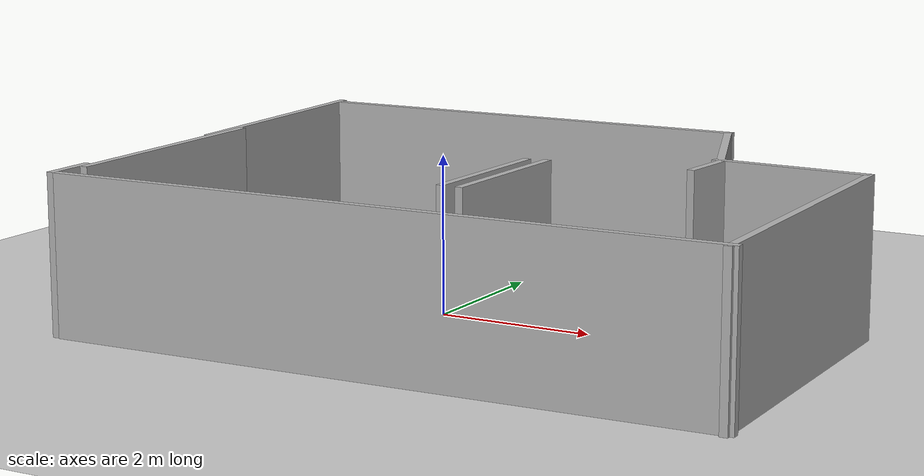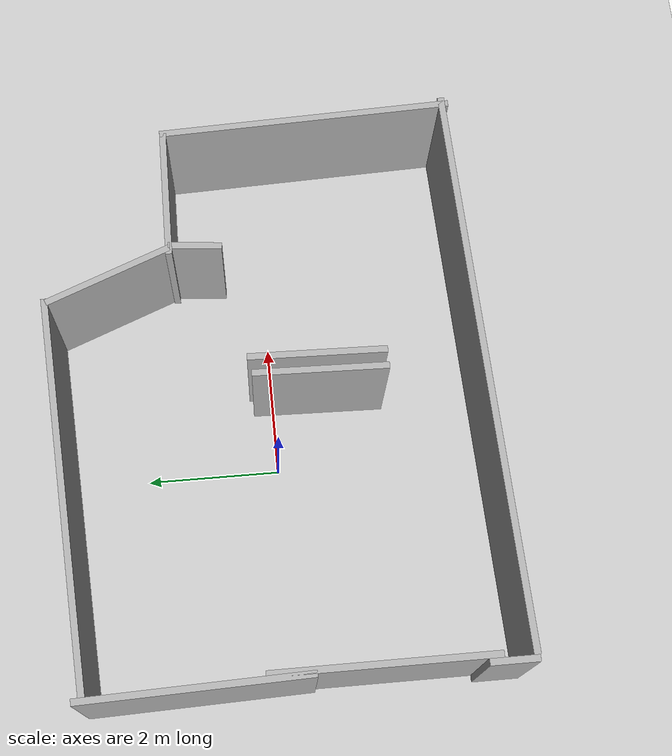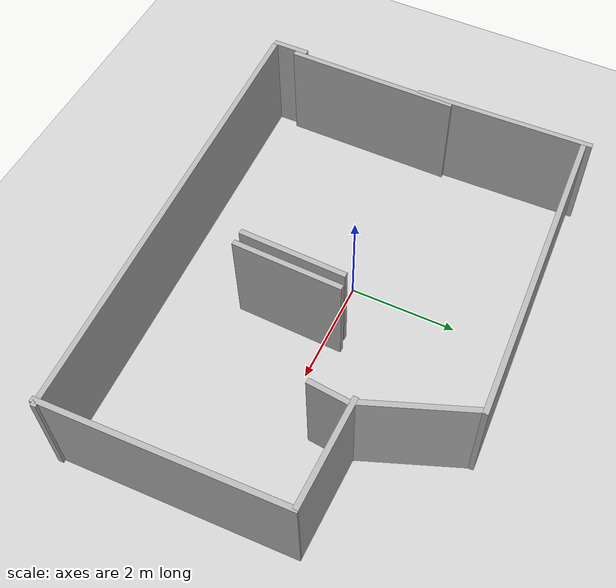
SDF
<?xml version="1.0" ?>
<sdf version="1.6">
  <world name="slam_world">
    <plugin filename="ignition-gazebo-physics-system" name="ignition::gazebo::systems::Physics"></plugin>
    <plugin filename="ignition-gazebo-scene-broadcaster-system" name="ignition::gazebo::systems::SceneBroadcaster"></plugin>
    <plugin filename="ignition-gazebo-sensors-system" name="ignition::gazebo::systems::Sensors">
      <render_engine>ogre2</render_engine>
    </plugin>
    <plugin filename="ignition-gazebo-user-commands-system" name="ignition::gazebo::systems::UserCommands"></plugin>

    <light name="sun" type="directional">
      <pose>0 0 10 0 0 0</pose>
      <diffuse>0.8 0.8 0.8 1</diffuse>
      <direction>-0.5 0.1 -0.9</direction>
    </light>
    <model name="ground_plane">
      <static>true</static>
      <link name="link">
        <collision name="collision">
          <geometry>
            <plane>
              <normal>0 0 1</normal>
              <size>100 100</size>
            </plane>
          </geometry>
        </collision>
        <visual name="visual">
          <geometry>
            <plane>
              <normal>0 0 1</normal>
              <size>100 100</size>
            </plane>
          </geometry>
          <material>
            <ambient>0.8 0.8 0.8 1</ambient>
            <diffuse>0.8 0.8 0.8 1</diffuse>
            <specular>0.8 0.8 0.8 1</specular>
          </material>
        </visual>
      </link>
    </model>
    <model name="wall_0">
      <static>true</static>
      <pose>0.9250000000000005 -3.0999999999999996 1.0 0 0 0.035073330533225394</pose>
      <link name="link">
        <collision name="collision">
          <geometry>
            <box>
              <size>8.55526153895952 0.1 2.0</size>
            </box>
          </geometry>
        </collision>
        <visual name="visual">
          <geometry>
            <box>
              <size>8.55526153895952 0.1 2.0</size>
            </box>
          </geometry>
          <material>
            <ambient>0.5 0.5 0.5 1</ambient>
            <diffuse>0.7 0.7 0.7 1</diffuse>
          </material>
        </visual>
      </link>
    </model>
    <model name="wall_1">
      <static>true</static>
      <pose>-0.5250000000000001 3.1000000000000005 1.0 0 0 0.05123716740341893</pose>
      <link name="link">
        <collision name="collision">
          <geometry>
            <box>
              <size>5.8576872569299905 0.1 2.0</size>
            </box>
          </geometry>
        </collision>
        <visual name="visual">
          <geometry>
            <box>
              <size>5.8576872569299905 0.1 2.0</size>
            </box>
          </geometry>
          <material>
            <ambient>0.5 0.5 0.5 1</ambient>
            <diffuse>0.7 0.7 0.7 1</diffuse>
          </material>
        </visual>
      </link>
    </model>
    <model name="wall_2">
      <static>true</static>
      <pose>-3.3 -1.1749999999999998 1.0 0 0 1.5707963267948966</pose>
      <link name="link">
        <collision name="collision">
          <geometry>
            <box>
              <size>3.25 0.1 2.0</size>
            </box>
          </geometry>
        </collision>
        <visual name="visual">
          <geometry>
            <box>
              <size>3.25 0.1 2.0</size>
            </box>
          </geometry>
          <material>
            <ambient>0.5 0.5 0.5 1</ambient>
            <diffuse>0.7 0.7 0.7 1</diffuse>
          </material>
        </visual>
      </link>
    </model>
    <model name="wall_4">
      <static>true</static>
      <pose>5.025000000000001 -0.8249999999999997 1.0 0 0 -1.5371012194488802</pose>
      <link name="link">
        <collision name="collision">
          <geometry>
            <box>
              <size>4.452527372178637 0.1 2.0</size>
            </box>
          </geometry>
        </collision>
        <visual name="visual">
          <geometry>
            <box>
              <size>4.452527372178637 0.1 2.0</size>
            </box>
          </geometry>
          <material>
            <ambient>0.5 0.5 0.5 1</ambient>
            <diffuse>0.7 0.7 0.7 1</diffuse>
          </material>
        </visual>
      </link>
    </model>
    <model name="wall_5">
      <static>true</static>
      <pose>-3.4000000000000004 1.4250000000000003 1.0 0 0 -1.5409544421277872</pose>
      <link name="link">
        <collision name="collision">
          <geometry>
            <box>
              <size>3.351492204973779 0.1 2.0</size>
            </box>
          </geometry>
        </collision>
        <visual name="visual">
          <geometry>
            <box>
              <size>3.351492204973779 0.1 2.0</size>
            </box>
          </geometry>
          <material>
            <ambient>0.5 0.5 0.5 1</ambient>
            <diffuse>0.7 0.7 0.7 1</diffuse>
          </material>
        </visual>
      </link>
    </model>
    <model name="wall_7">
      <static>true</static>
      <pose>1.2250000000000005 -0.6749999999999996 1.0 0 0 1.546410917622178</pose>
      <link name="link">
        <collision name="collision">
          <geometry>
            <box>
              <size>2.050609665440988 0.1 2.0</size>
            </box>
          </geometry>
        </collision>
        <visual name="visual">
          <geometry>
            <box>
              <size>2.050609665440988 0.1 2.0</size>
            </box>
          </geometry>
          <material>
            <ambient>0.5 0.5 0.5 1</ambient>
            <diffuse>0.7 0.7 0.7 1</diffuse>
          </material>
        </visual>
      </link>
    </model>
    <model name="wall_9">
      <static>true</static>
      <pose>3.0618 0.9829 1.0 0 0 1.482140444927459</pose>
      <link name="link">
        <collision name="collision">
          <geometry>
            <box>
              <size>0.8 0.1 2.0</size>
            </box>
          </geometry>
        </collision>
        <visual name="visual">
          <geometry>
            <box>
              <size>0.8 0.1 2.0</size>
            </box>
          </geometry>
          <material>
            <ambient>0.5 0.5 0.5 1</ambient>
            <diffuse>0.7 0.7 0.7 1</diffuse>
          </material>
        </visual>
      </link>
    </model>
    <model name="wall_11">
      <static>true</static>
      <pose>3.9609 1.3646 1.0 0 0 -0.014083575822860142</pose>
      <link name="link">
        <collision name="collision">
          <geometry>
            <box>
              <size>2.0 0.1 2.0</size>
            </box>
          </geometry>
        </collision>
        <visual name="visual">
          <geometry>
            <box>
              <size>2.0 0.1 2.0</size>
            </box>
          </geometry>
          <material>
            <ambient>0.5 0.5 0.5 1</ambient>
            <diffuse>0.7 0.7 0.7 1</diffuse>
          </material>
        </visual>
      </link>
    </model>
    <model name="wall_12">
      <static>true</static>
      <pose>0.9750000000000005 -0.6999999999999995 1.0 0 0 1.5458015331759765</pose>
      <link name="link">
        <collision name="collision">
          <geometry>
            <box>
              <size>2.0006249023742564 0.1 2.0</size>
            </box>
          </geometry>
        </collision>
        <visual name="visual">
          <geometry>
            <box>
              <size>2.0006249023742564 0.1 2.0</size>
            </box>
          </geometry>
          <material>
            <ambient>0.5 0.5 0.5 1</ambient>
            <diffuse>0.7 0.7 0.7 1</diffuse>
          </material>
        </visual>
      </link>
    </model>
    <model name="wall_15">
      <static>true</static>
      <pose>-3.4 -2.9363 1.0 0 0 1.5707963267948966</pose>
      <link name="link">
        <collision name="collision">
          <geometry>
            <box>
              <size>0.7000000000000002 0.1 2.0</size>
            </box>
          </geometry>
        </collision>
        <visual name="visual">
          <geometry>
            <box>
              <size>0.7000000000000002 0.1 2.0</size>
            </box>
          </geometry>
          <material>
            <ambient>0.5 0.5 0.5 1</ambient>
            <diffuse>0.7 0.7 0.7 1</diffuse>
          </material>
        </visual>
      </link>
    </model>
    <model name="wall_16">
      <static>true</static>
      <pose>2.7 2.30 1.0 0 0 -1.20</pose>
      <link name="link">
        <collision name="collision">
          <geometry>
            <box>
              <size>2.0 0.1 2.0</size>
            </box>
          </geometry>
        </collision>
        <visual name="visual">
          <geometry>
            <box>
              <size>2.0 0.1 2.0</size>
            </box>
          </geometry>
          <material>
            <ambient>0.5 0.5 0.5 1</ambient>
            <diffuse>0.7 0.7 0.7 1</diffuse>
          </material>
        </visual>
      </link>
    </model>
  </world>
</sdf>
